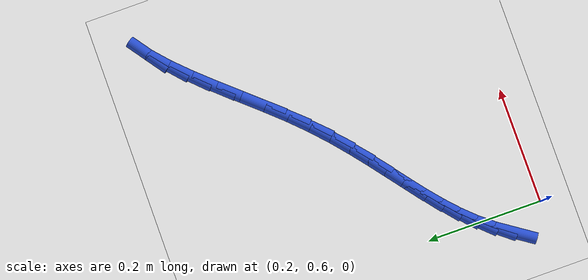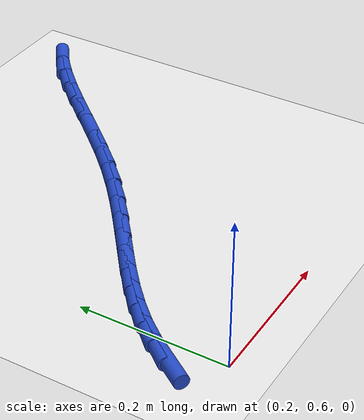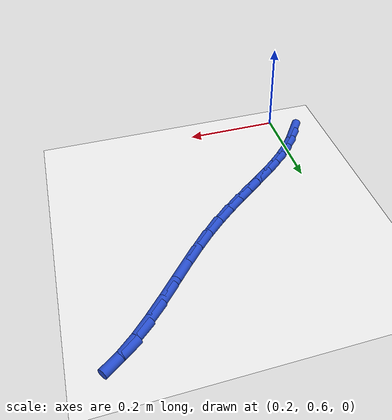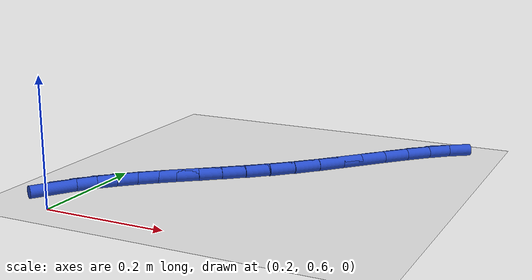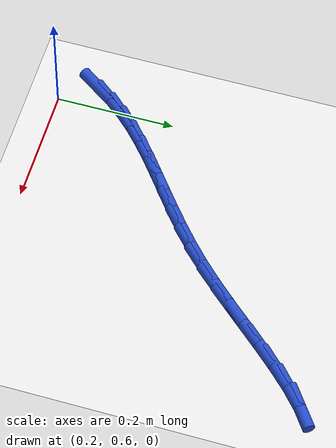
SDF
<sdf version="1.6">
 <world name="default">
  <model name="ground_plane">
   <static>1</static>
   <link name="link">
    <collision name="collision">
     <geometry><plane><normal>0 0 1</normal><size>100 100</size></plane></geometry>
     <surface><friction><ode><mu>100</mu><mu2>50</mu2></ode></friction></surface>
    </collision>
    <visual name="visual">
     <cast_shadows>0</cast_shadows>
     <geometry><plane><normal>0 0 1</normal><size>100 100</size></plane></geometry>
     <material>
      <script><uri>file://media/materials/scripts/gazebo.material</uri><name>Gazebo/WhiteGlow</name></script>
     </material>
    </visual>
   </link>
  </model>
  <model name="line">
   <link name="link_19">
    <pose>0.1655356871086988 0.6608796755413195 0.01 0 1.57 0.9707655645267002</pose>
    <collision name="collision">
     <geometry><cylinder><radius>0.01</radius><length>0.08</length></cylinder></geometry>
    </collision>
    <visual name="visual">
     <material>
      <script><name>Gazebo/Blue</name><uri>file://media/materials/scripts/gazebo.material</uri></script>
     </material>
     <geometry><cylinder><radius>0.01</radius><length>0.08</length></cylinder></geometry>
    </visual>
   </link>
   <link name="link_20">
    <pose>0.18431544215355264 0.6883281554464699 0.01 0 1.57 0.8892927408092125</pose>
    <collision name="collision">
     <geometry><cylinder><radius>0.01</radius><length>0.08</length></cylinder></geometry>
    </collision>
    <visual name="visual">
     <material>
      <script><name>Gazebo/Blue</name><uri>file://media/materials/scripts/gazebo.material</uri></script>
     </material>
     <geometry><cylinder><radius>0.01</radius><length>0.08</length></cylinder></geometry>
    </visual>
   </link>
   <link name="link_21">
    <pose>0.20493725586857156 0.7137510517195338 0.01 0 1.57 0.8103554758994558</pose>
    <collision name="collision">
     <geometry><cylinder><radius>0.01</radius><length>0.08</length></cylinder></geometry>
    </collision>
    <visual name="visual">
     <material>
      <script><name>Gazebo/Blue</name><uri>file://media/materials/scripts/gazebo.material</uri></script>
     </material>
     <geometry><cylinder><radius>0.01</radius><length>0.08</length></cylinder></geometry>
    </visual>
   </link>
   <link name="link_22">
    <pose>0.22736588889798603 0.737328101396127 0.01 0 1.57 0.7464784395150182</pose>
    <collision name="collision">
     <geometry><cylinder><radius>0.01</radius><length>0.08</length></cylinder></geometry>
    </collision>
    <visual name="visual">
     <material>
      <script><name>Gazebo/Blue</name><uri>file://media/materials/scripts/gazebo.material</uri></script>
     </material>
     <geometry><cylinder><radius>0.01</radius><length>0.08</length></cylinder></geometry>
    </visual>
   </link>
   <link name="link_23">
    <pose>0.2514130473942208 0.759572687728024 0.01 0 1.57 0.6996120722404389</pose>
    <collision name="collision">
     <geometry><cylinder><radius>0.01</radius><length>0.08</length></cylinder></geometry>
    </collision>
    <visual name="visual">
     <material>
      <script><name>Gazebo/Blue</name><uri>file://media/materials/scripts/gazebo.material</uri></script>
     </material>
     <geometry><cylinder><radius>0.01</radius><length>0.08</length></cylinder></geometry>
    </visual>
   </link>
   <link name="link_24">
    <pose>0.27688483977929285 0.7810103965593411 0.01 0 1.57 0.6700281288413371</pose>
    <collision name="collision">
     <geometry><cylinder><radius>0.01</radius><length>0.08</length></cylinder></geometry>
    </collision>
    <visual name="visual">
     <material>
      <script><name>Gazebo/Blue</name><uri>file://media/materials/scripts/gazebo.material</uri></script>
     </material>
     <geometry><cylinder><radius>0.01</radius><length>0.08</length></cylinder></geometry>
    </visual>
   </link>
   <link name="link_25">
    <pose>0.30358737447521916 0.8021668137341953 0.01 0 1.57 0.6571146407556601</pose>
    <collision name="collision">
     <geometry><cylinder><radius>0.01</radius><length>0.08</length></cylinder></geometry>
    </collision>
    <visual name="visual">
     <material>
      <script><name>Gazebo/Blue</name><uri>file://media/materials/scripts/gazebo.material</uri></script>
     </material>
     <geometry><cylinder><radius>0.01</radius><length>0.08</length></cylinder></geometry>
    </visual>
   </link>
   <link name="link_26">
    <pose>0.33132675990401705 0.8235675250967033 0.01 0 1.57 0.6597312314286204</pose>
    <collision name="collision">
     <geometry><cylinder><radius>0.01</radius><length>0.08</length></cylinder></geometry>
    </collision>
    <visual name="visual">
     <material>
      <script><name>Gazebo/Blue</name><uri>file://media/materials/scripts/gazebo.material</uri></script>
     </material>
     <geometry><cylinder><radius>0.01</radius><length>0.08</length></cylinder></geometry>
    </visual>
   </link>
   <link name="link_27">
    <pose>0.3599091044877033 0.8457381164909813 0.01 0 1.57 0.6764267815310502</pose>
    <collision name="collision">
     <geometry><cylinder><radius>0.01</radius><length>0.08</length></cylinder></geometry>
    </collision>
    <visual name="visual">
     <material>
      <script><name>Gazebo/Blue</name><uri>file://media/materials/scripts/gazebo.material</uri></script>
     </material>
     <geometry><cylinder><radius>0.01</radius><length>0.08</length></cylinder></geometry>
    </visual>
   </link>
   <link name="link_28">
    <pose>0.38914051664829513 0.869204173761146 0.01 0 1.57 0.7055395580989225</pose>
    <collision name="collision">
     <geometry><cylinder><radius>0.01</radius><length>0.08</length></cylinder></geometry>
    </collision>
    <visual name="visual">
     <material>
      <script><name>Gazebo/Blue</name><uri>file://media/materials/scripts/gazebo.material</uri></script>
     </material>
     <geometry><cylinder><radius>0.01</radius><length>0.08</length></cylinder></geometry>
    </visual>
   </link>
   <link name="link_29">
    <pose>0.41882710480780966 0.8944912827513144 0.01 0 1.57 0.7452311552635893</pose>
    <collision name="collision">
     <geometry><cylinder><radius>0.01</radius><length>0.08</length></cylinder></geometry>
    </collision>
    <visual name="visual">
     <material>
      <script><name>Gazebo/Blue</name><uri>file://media/materials/scripts/gazebo.material</uri></script>
     </material>
     <geometry><cylinder><radius>0.01</radius><length>0.08</length></cylinder></geometry>
    </visual>
   </link>
   <link name="link_30">
    <pose>0.4487749773882638 0.9221250293056027 0.01 0 1.57 0.7922068542492547</pose>
    <collision name="collision">
     <geometry><cylinder><radius>0.01</radius><length>0.08</length></cylinder></geometry>
    </collision>
    <visual name="visual">
     <material>
      <script><name>Gazebo/Blue</name><uri>file://media/materials/scripts/gazebo.material</uri></script>
     </material>
     <geometry><cylinder><radius>0.01</radius><length>0.08</length></cylinder></geometry>
    </visual>
   </link>
   <link name="link_31">
    <pose>0.4787946413078842 0.9525562912514908 0.01 0 1.57 0.8289208667558533</pose>
    <collision name="collision">
     <geometry><cylinder><radius>0.01</radius><length>0.08</length></cylinder></geometry>
    </collision>
    <visual name="visual">
     <material>
      <script><name>Gazebo/Blue</name><uri>file://media/materials/scripts/gazebo.material</uri></script>
     </material>
     <geometry><cylinder><radius>0.01</radius><length>0.08</length></cylinder></geometry>
    </visual>
   </link>
   <link name="link_32">
    <pose>0.5087549478012293 0.9852449740596831 0.01 0 1.57 0.8466002324156454</pose>
    <collision name="collision">
     <geometry><cylinder><radius>0.01</radius><length>0.08</length></cylinder></geometry>
    </collision>
    <visual name="visual">
     <material>
      <script><name>Gazebo/Blue</name><uri>file://media/materials/scripts/gazebo.material</uri></script>
     </material>
     <geometry><cylinder><radius>0.01</radius><length>0.08</length></cylinder></geometry>
    </visual>
   </link>
   <link name="link_33">
    <pose>0.5385661235797489 1.0189482248788024 0.01 0 1.57 0.8469844092881079</pose>
    <collision name="collision">
     <geometry><cylinder><radius>0.01</radius><length>0.08</length></cylinder></geometry>
    </collision>
    <visual name="visual">
     <material>
      <script><name>Gazebo/Blue</name><uri>file://media/materials/scripts/gazebo.material</uri></script>
     </material>
     <geometry><cylinder><radius>0.01</radius><length>0.08</length></cylinder></geometry>
    </visual>
   </link>
   <link name="link_34">
    <pose>0.5681392739268819 1.052408268400419 0.01 0 1.57 0.82969263930275</pose>
    <collision name="collision">
     <geometry><cylinder><radius>0.01</radius><length>0.08</length></cylinder></geometry>
    </collision>
    <visual name="visual">
     <material>
      <script><name>Gazebo/Blue</name><uri>file://media/materials/scripts/gazebo.material</uri></script>
     </material>
     <geometry><cylinder><radius>0.01</radius><length>0.08</length></cylinder></geometry>
    </visual>
   </link>
   <link name="link_35">
    <pose>0.5973855041260675 1.0843673293161042 0.01 0 1.57 0.7917720748038594</pose>
    <collision name="collision">
     <geometry><cylinder><radius>0.01</radius><length>0.08</length></cylinder></geometry>
    </collision>
    <visual name="visual">
     <material>
      <script><name>Gazebo/Blue</name><uri>file://media/materials/scripts/gazebo.material</uri></script>
     </material>
     <geometry><cylinder><radius>0.01</radius><length>0.08</length></cylinder></geometry>
    </visual>
   </link>
   <link name="link_36">
    <pose>0.6262159194607443 1.1135676323174295 0.01 0 1.57 0.7267481290648145</pose>
    <collision name="collision">
     <geometry><cylinder><radius>0.01</radius><length>0.08</length></cylinder></geometry>
    </collision>
    <visual name="visual">
     <material>
      <script><name>Gazebo/Blue</name><uri>file://media/materials/scripts/gazebo.material</uri></script>
     </material>
     <geometry><cylinder><radius>0.01</radius><length>0.08</length></cylinder></geometry>
    </visual>
   </link>
   <link name="link_37">
    <pose>0.6545416252143513 1.138751402095965 0.01 0 1.57 0.6226525753252955</pose>
    <collision name="collision">
     <geometry><cylinder><radius>0.01</radius><length>0.08</length></cylinder></geometry>
    </collision>
    <visual name="visual">
     <material>
      <script><name>Gazebo/Blue</name><uri>file://media/materials/scripts/gazebo.material</uri></script>
     </material>
     <geometry><cylinder><radius>0.01</radius><length>0.08</length></cylinder></geometry>
    </visual>
   </link>
  </model>
 </world>
</sdf>
